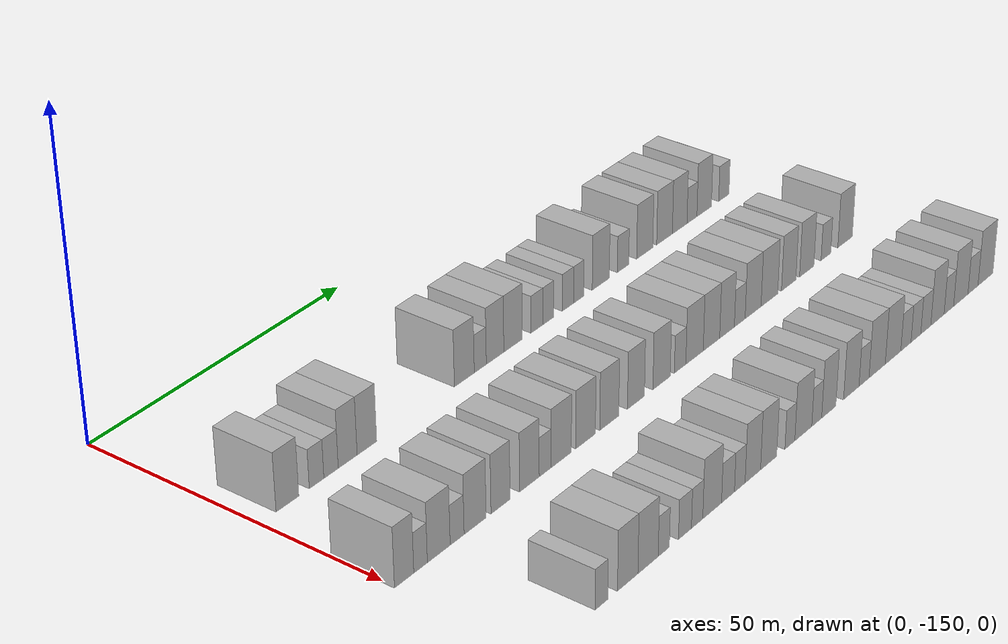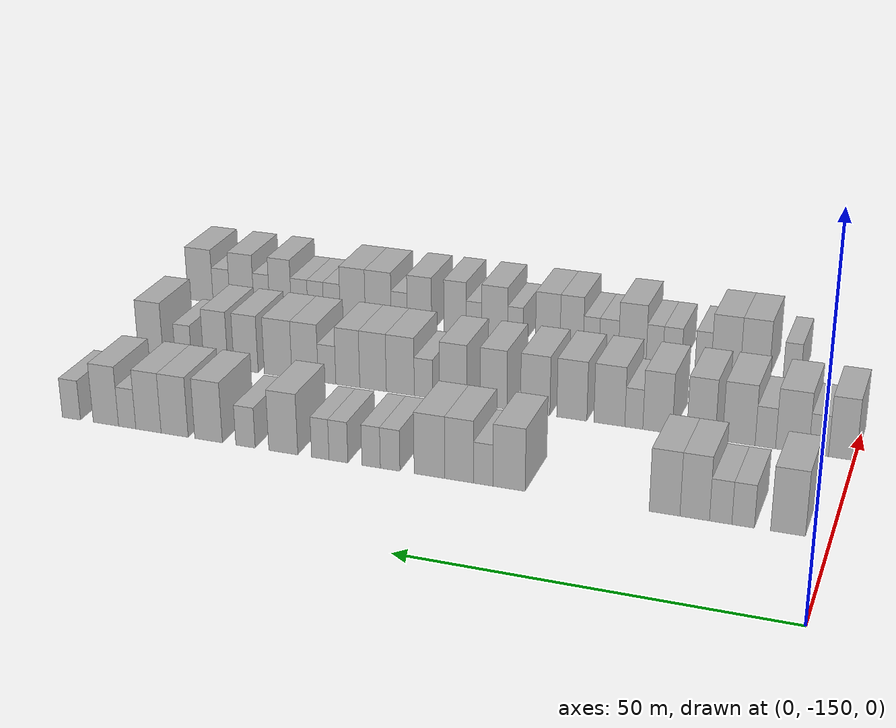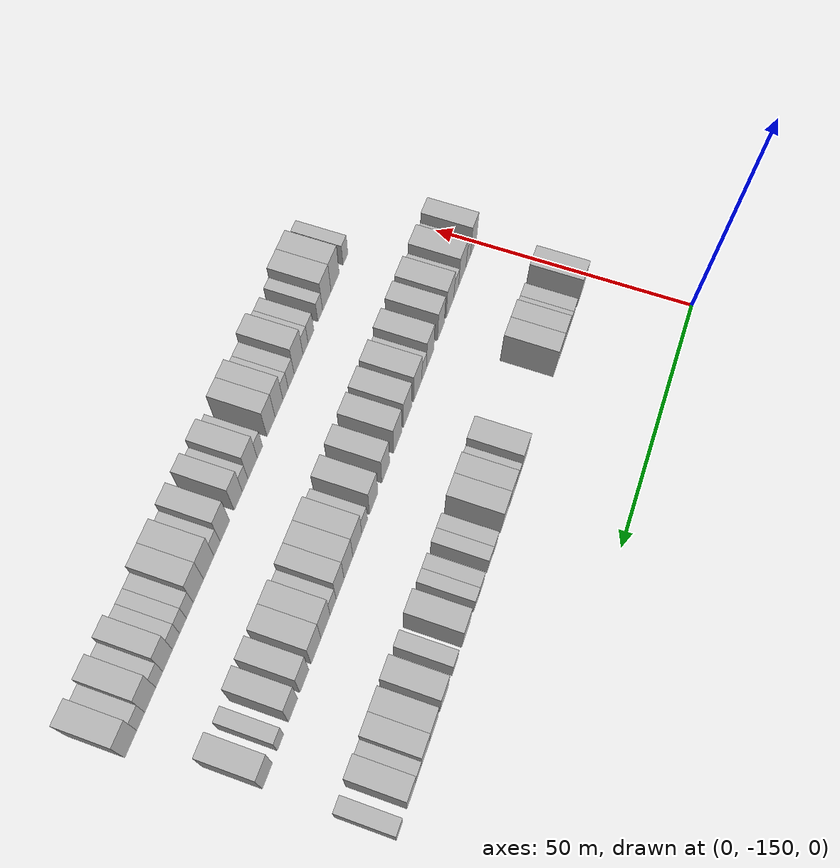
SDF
<sdf version="1.6">
 <world name="default">
  <model name="building_27">
   <static>1</static>
   <pose>25.0000 -144.7286 0 0.000000 0.000000 0.000000</pose>
   <link name="link">
    <pose>0 0 4.50 0 0 0</pose>
    <collision name="collision"><geometry><box><size>10.0000 4.3263 9.0000</size></box></geometry></collision>
    <visual name="visual">
     <cast_shadows>0</cast_shadows>
     <geometry><box><size>10.0000 4.3263 9.0000</size></box></geometry>
     <material>
      <script>
       <uri>model://HANNAS_wall/materials/scripts</uri>
       <uri>model://HANNAS_wall/materials/textures</uri>
       <name>vrc/HANNAS_wall</name>
      </script>
     </material>
    </visual>
   </link>
  </model>
  <model name="building_28">
   <static>1</static>
   <pose>25.0000 -139.1479 0 0.000000 0.000000 0.000000</pose>
   <link name="link">
    <pose>0 0 3.00 0 0 0</pose>
    <collision name="collision"><geometry><box><size>10.0000 2.8351 6.0000</size></box></geometry></collision>
    <visual name="visual">
     <cast_shadows>0</cast_shadows>
     <geometry><box><size>10.0000 2.8351 6.0000</size></box></geometry>
     <material>
      <script>
       <uri>model://HANNAS_wall/materials/scripts</uri>
       <uri>model://HANNAS_wall/materials/textures</uri>
       <name>vrc/HANNAS_wall</name>
      </script>
     </material>
    </visual>
   </link>
  </model>
  <model name="building_29">
   <static>1</static>
   <pose>25.0000 -136.3206 0 0.000000 0.000000 0.000000</pose>
   <link name="link">
    <pose>0 0 3.00 0 0 0</pose>
    <collision name="collision"><geometry><box><size>10.0000 2.8196 6.0000</size></box></geometry></collision>
    <visual name="visual">
     <cast_shadows>0</cast_shadows>
     <geometry><box><size>10.0000 2.8196 6.0000</size></box></geometry>
     <material>
      <script>
       <uri>model://HANNAS_wall/materials/scripts</uri>
       <uri>model://HANNAS_wall/materials/textures</uri>
       <name>vrc/HANNAS_wall</name>
      </script>
     </material>
    </visual>
   </link>
  </model>
  <model name="building_30">
   <static>1</static>
   <pose>25.0000 -133.0319 0 0.000000 0.000000 0.000000</pose>
   <link name="link">
    <pose>0 0 4.50 0 0 0</pose>
    <collision name="collision"><geometry><box><size>10.0000 3.7577 9.0000</size></box></geometry></collision>
    <visual name="visual">
     <cast_shadows>0</cast_shadows>
     <geometry><box><size>10.0000 3.7577 9.0000</size></box></geometry>
     <material>
      <script>
       <uri>model://HANNAS_wall/materials/scripts</uri>
       <uri>model://HANNAS_wall/materials/textures</uri>
       <name>vrc/HANNAS_wall</name>
      </script>
     </material>
    </visual>
   </link>
  </model>
  <model name="building_31">
   <static>1</static>
   <pose>25.0000 -129.1753 0 0.000000 0.000000 0.000000</pose>
   <link name="link">
    <pose>0 0 4.50 0 0 0</pose>
    <collision name="collision"><geometry><box><size>10.0000 3.9555 9.0000</size></box></geometry></collision>
    <visual name="visual">
     <cast_shadows>0</cast_shadows>
     <geometry><box><size>10.0000 3.9555 9.0000</size></box></geometry>
     <material>
      <script>
       <uri>model://HANNAS_wall/materials/scripts</uri>
       <uri>model://HANNAS_wall/materials/textures</uri>
       <name>vrc/HANNAS_wall</name>
      </script>
     </material>
    </visual>
   </link>
  </model>
  <model name="building_32">
   <static>1</static>
   <pose>25.0000 -108.6616 0 0.000000 0.000000 0.000000</pose>
   <link name="link">
    <pose>0 0 4.50 0 0 0</pose>
    <collision name="collision"><geometry><box><size>10.0000 4.3573 9.0000</size></box></geometry></collision>
    <visual name="visual">
     <cast_shadows>0</cast_shadows>
     <geometry><box><size>10.0000 4.3573 9.0000</size></box></geometry>
     <material>
      <script>
       <uri>model://HANNAS_wall/materials/scripts</uri>
       <uri>model://HANNAS_wall/materials/textures</uri>
       <name>vrc/HANNAS_wall</name>
      </script>
     </material>
    </visual>
   </link>
  </model>
  <model name="building_33">
   <static>1</static>
   <pose>25.0000 -105.1436 0 0.000000 0.000000 0.000000</pose>
   <link name="link">
    <pose>0 0 3.00 0 0 0</pose>
    <collision name="collision"><geometry><box><size>10.0000 2.6787 6.0000</size></box></geometry></collision>
    <visual name="visual">
     <cast_shadows>0</cast_shadows>
     <geometry><box><size>10.0000 2.6787 6.0000</size></box></geometry>
     <material>
      <script>
       <uri>model://HANNAS_wall/materials/scripts</uri>
       <uri>model://HANNAS_wall/materials/textures</uri>
       <name>vrc/HANNAS_wall</name>
      </script>
     </material>
    </visual>
   </link>
  </model>
  <model name="building_34">
   <static>1</static>
   <pose>25.0000 -101.8308 0 0.000000 0.000000 0.000000</pose>
   <link name="link">
    <pose>0 0 4.50 0 0 0</pose>
    <collision name="collision"><geometry><box><size>10.0000 3.9469 9.0000</size></box></geometry></collision>
    <visual name="visual">
     <cast_shadows>0</cast_shadows>
     <geometry><box><size>10.0000 3.9469 9.0000</size></box></geometry>
     <material>
      <script>
       <uri>model://HANNAS_wall/materials/scripts</uri>
       <uri>model://HANNAS_wall/materials/textures</uri>
       <name>vrc/HANNAS_wall</name>
      </script>
     </material>
    </visual>
   </link>
  </model>
  <model name="building_35">
   <static>1</static>
   <pose>25.0000 -97.7363 0 0.000000 0.000000 0.000000</pose>
   <link name="link">
    <pose>0 0 4.50 0 0 0</pose>
    <collision name="collision"><geometry><box><size>10.0000 4.2420 9.0000</size></box></geometry></collision>
    <visual name="visual">
     <cast_shadows>0</cast_shadows>
     <geometry><box><size>10.0000 4.2420 9.0000</size></box></geometry>
     <material>
      <script>
       <uri>model://HANNAS_wall/materials/scripts</uri>
       <uri>model://HANNAS_wall/materials/textures</uri>
       <name>vrc/HANNAS_wall</name>
      </script>
     </material>
    </visual>
   </link>
  </model>
  <model name="building_36">
   <static>1</static>
   <pose>25.0000 -92.2385 0 0.000000 0.000000 0.000000</pose>
   <link name="link">
    <pose>0 0 3.00 0 0 0</pose>
    <collision name="collision"><geometry><box><size>10.0000 2.7537 6.0000</size></box></geometry></collision>
    <visual name="visual">
     <cast_shadows>0</cast_shadows>
     <geometry><box><size>10.0000 2.7537 6.0000</size></box></geometry>
     <material>
      <script>
       <uri>model://HANNAS_wall/materials/scripts</uri>
       <uri>model://HANNAS_wall/materials/textures</uri>
       <name>vrc/HANNAS_wall</name>
      </script>
     </material>
    </visual>
   </link>
  </model>
  <model name="building_37">
   <static>1</static>
   <pose>25.0000 -89.5527 0 0.000000 0.000000 0.000000</pose>
   <link name="link">
    <pose>0 0 3.00 0 0 0</pose>
    <collision name="collision"><geometry><box><size>10.0000 2.6178 6.0000</size></box></geometry></collision>
    <visual name="visual">
     <cast_shadows>0</cast_shadows>
     <geometry><box><size>10.0000 2.6178 6.0000</size></box></geometry>
     <material>
      <script>
       <uri>model://HANNAS_wall/materials/scripts</uri>
       <uri>model://HANNAS_wall/materials/textures</uri>
       <name>vrc/HANNAS_wall</name>
      </script>
     </material>
    </visual>
   </link>
  </model>
  <model name="building_38">
   <static>1</static>
   <pose>25.0000 -84.8912 0 0.000000 0.000000 0.000000</pose>
   <link name="link">
    <pose>0 0 3.00 0 0 0</pose>
    <collision name="collision"><geometry><box><size>10.0000 2.7052 6.0000</size></box></geometry></collision>
    <visual name="visual">
     <cast_shadows>0</cast_shadows>
     <geometry><box><size>10.0000 2.7052 6.0000</size></box></geometry>
     <material>
      <script>
       <uri>model://HANNAS_wall/materials/scripts</uri>
       <uri>model://HANNAS_wall/materials/textures</uri>
       <name>vrc/HANNAS_wall</name>
      </script>
     </material>
    </visual>
   </link>
  </model>
  <model name="building_39">
   <static>1</static>
   <pose>25.0000 -82.2758 0 0.000000 0.000000 0.000000</pose>
   <link name="link">
    <pose>0 0 3.00 0 0 0</pose>
    <collision name="collision"><geometry><box><size>10.0000 2.5258 6.0000</size></box></geometry></collision>
    <visual name="visual">
     <cast_shadows>0</cast_shadows>
     <geometry><box><size>10.0000 2.5258 6.0000</size></box></geometry>
     <material>
      <script>
       <uri>model://HANNAS_wall/materials/scripts</uri>
       <uri>model://HANNAS_wall/materials/textures</uri>
       <name>vrc/HANNAS_wall</name>
      </script>
     </material>
    </visual>
   </link>
  </model>
  <model name="building_40">
   <static>1</static>
   <pose>25.0000 -76.8914 0 0.000000 0.000000 0.000000</pose>
   <link name="link">
    <pose>0 0 4.50 0 0 0</pose>
    <collision name="collision"><geometry><box><size>10.0000 4.2429 9.0000</size></box></geometry></collision>
    <visual name="visual">
     <cast_shadows>0</cast_shadows>
     <geometry><box><size>10.0000 4.2429 9.0000</size></box></geometry>
     <material>
      <script>
       <uri>model://HANNAS_wall/materials/scripts</uri>
       <uri>model://HANNAS_wall/materials/textures</uri>
       <name>vrc/HANNAS_wall</name>
      </script>
     </material>
    </visual>
   </link>
  </model>
  <model name="building_41">
   <static>1</static>
   <pose>25.0000 -71.3309 0 0.000000 0.000000 0.000000</pose>
   <link name="link">
    <pose>0 0 3.00 0 0 0</pose>
    <collision name="collision"><geometry><box><size>10.0000 2.8782 6.0000</size></box></geometry></collision>
    <visual name="visual">
     <cast_shadows>0</cast_shadows>
     <geometry><box><size>10.0000 2.8782 6.0000</size></box></geometry>
     <material>
      <script>
       <uri>model://HANNAS_wall/materials/scripts</uri>
       <uri>model://HANNAS_wall/materials/textures</uri>
       <name>vrc/HANNAS_wall</name>
      </script>
     </material>
    </visual>
   </link>
  </model>
  <model name="building_42">
   <static>1</static>
   <pose>25.0000 -65.8183 0 0.000000 0.000000 0.000000</pose>
   <link name="link">
    <pose>0 0 4.50 0 0 0</pose>
    <collision name="collision"><geometry><box><size>10.0000 4.1470 9.0000</size></box></geometry></collision>
    <visual name="visual">
     <cast_shadows>0</cast_shadows>
     <geometry><box><size>10.0000 4.1470 9.0000</size></box></geometry>
     <material>
      <script>
       <uri>model://HANNAS_wall/materials/scripts</uri>
       <uri>model://HANNAS_wall/materials/textures</uri>
       <name>vrc/HANNAS_wall</name>
      </script>
     </material>
    </visual>
   </link>
  </model>
  <model name="building_43">
   <static>1</static>
   <pose>25.0000 -60.6888 0 0.000000 0.000000 0.000000</pose>
   <link name="link">
    <pose>0 0 4.50 0 0 0</pose>
    <collision name="collision"><geometry><box><size>10.0000 4.1120 9.0000</size></box></geometry></collision>
    <visual name="visual">
     <cast_shadows>0</cast_shadows>
     <geometry><box><size>10.0000 4.1120 9.0000</size></box></geometry>
     <material>
      <script>
       <uri>model://HANNAS_wall/materials/scripts</uri>
       <uri>model://HANNAS_wall/materials/textures</uri>
       <name>vrc/HANNAS_wall</name>
      </script>
     </material>
    </visual>
   </link>
  </model>
  <model name="building_44">
   <static>1</static>
   <pose>25.0000 -56.6895 0 0.000000 0.000000 0.000000</pose>
   <link name="link">
    <pose>0 0 4.50 0 0 0</pose>
    <collision name="collision"><geometry><box><size>10.0000 3.8864 9.0000</size></box></geometry></collision>
    <visual name="visual">
     <cast_shadows>0</cast_shadows>
     <geometry><box><size>10.0000 3.8864 9.0000</size></box></geometry>
     <material>
      <script>
       <uri>model://HANNAS_wall/materials/scripts</uri>
       <uri>model://HANNAS_wall/materials/textures</uri>
       <name>vrc/HANNAS_wall</name>
      </script>
     </material>
    </visual>
   </link>
  </model>
  <model name="building_45">
   <static>1</static>
   <pose>25.0000 -53.4133 0 0.000000 0.000000 0.000000</pose>
   <link name="link">
    <pose>0 0 3.00 0 0 0</pose>
    <collision name="collision"><geometry><box><size>10.0000 2.6660 6.0000</size></box></geometry></collision>
    <visual name="visual">
     <cast_shadows>0</cast_shadows>
     <geometry><box><size>10.0000 2.6660 6.0000</size></box></geometry>
     <material>
      <script>
       <uri>model://HANNAS_wall/materials/scripts</uri>
       <uri>model://HANNAS_wall/materials/textures</uri>
       <name>vrc/HANNAS_wall</name>
      </script>
     </material>
    </visual>
   </link>
  </model>
  <model name="building_46">
   <static>1</static>
   <pose>25.0000 -50.1086 0 0.000000 0.000000 0.000000</pose>
   <link name="link">
    <pose>0 0 4.50 0 0 0</pose>
    <collision name="collision"><geometry><box><size>10.0000 3.9434 9.0000</size></box></geometry></collision>
    <visual name="visual">
     <cast_shadows>0</cast_shadows>
     <geometry><box><size>10.0000 3.9434 9.0000</size></box></geometry>
     <material>
      <script>
       <uri>model://HANNAS_wall/materials/scripts</uri>
       <uri>model://HANNAS_wall/materials/textures</uri>
       <name>vrc/HANNAS_wall</name>
      </script>
     </material>
    </visual>
   </link>
  </model>
  <model name="building_47">
   <static>1</static>
   <pose>25.0000 -44.7140 0 0.000000 0.000000 0.000000</pose>
   <link name="link">
    <pose>0 0 3.00 0 0 0</pose>
    <collision name="collision"><geometry><box><size>10.0000 2.8458 6.0000</size></box></geometry></collision>
    <visual name="visual">
     <cast_shadows>0</cast_shadows>
     <geometry><box><size>10.0000 2.8458 6.0000</size></box></geometry>
     <material>
      <script>
       <uri>model://HANNAS_wall/materials/scripts</uri>
       <uri>model://HANNAS_wall/materials/textures</uri>
       <name>vrc/HANNAS_wall</name>
      </script>
     </material>
    </visual>
   </link>
  </model>
  <model name="building_143">
   <static>1</static>
   <pose>47.0000 -148.4020 0 0.000000 0.000000 0.000000</pose>
   <link name="link">
    <pose>0 0 4.50 0 0 0</pose>
    <collision name="collision"><geometry><box><size>10.0000 3.6877 9.0000</size></box></geometry></collision>
    <visual name="visual">
     <cast_shadows>0</cast_shadows>
     <geometry><box><size>10.0000 3.6877 9.0000</size></box></geometry>
     <material>
      <script>
       <uri>model://HANNAS_wall/materials/scripts</uri>
       <uri>model://HANNAS_wall/materials/textures</uri>
       <name>vrc/HANNAS_wall</name>
      </script>
     </material>
    </visual>
   </link>
  </model>
  <model name="building_144">
   <static>1</static>
   <pose>47.0000 -145.2480 0 0.000000 0.000000 0.000000</pose>
   <link name="link">
    <pose>0 0 3.00 0 0 0</pose>
    <collision name="collision"><geometry><box><size>10.0000 2.6203 6.0000</size></box></geometry></collision>
    <visual name="visual">
     <cast_shadows>0</cast_shadows>
     <geometry><box><size>10.0000 2.6203 6.0000</size></box></geometry>
     <material>
      <script>
       <uri>model://HANNAS_wall/materials/scripts</uri>
       <uri>model://HANNAS_wall/materials/textures</uri>
       <name>vrc/HANNAS_wall</name>
      </script>
     </material>
    </visual>
   </link>
  </model>
  <model name="building_145">
   <static>1</static>
   <pose>47.0000 -141.7014 0 0.000000 0.000000 0.000000</pose>
   <link name="link">
    <pose>0 0 4.50 0 0 0</pose>
    <collision name="collision"><geometry><box><size>10.0000 4.4728 9.0000</size></box></geometry></collision>
    <visual name="visual">
     <cast_shadows>0</cast_shadows>
     <geometry><box><size>10.0000 4.4728 9.0000</size></box></geometry>
     <material>
      <script>
       <uri>model://HANNAS_wall/materials/scripts</uri>
       <uri>model://HANNAS_wall/materials/textures</uri>
       <name>vrc/HANNAS_wall</name>
      </script>
     </material>
    </visual>
   </link>
  </model>
  <model name="building_146">
   <static>1</static>
   <pose>47.0000 -138.0748 0 0.000000 0.000000 0.000000</pose>
   <link name="link">
    <pose>0 0 3.00 0 0 0</pose>
    <collision name="collision"><geometry><box><size>10.0000 2.7804 6.0000</size></box></geometry></collision>
    <visual name="visual">
     <cast_shadows>0</cast_shadows>
     <geometry><box><size>10.0000 2.7804 6.0000</size></box></geometry>
     <material>
      <script>
       <uri>model://HANNAS_wall/materials/scripts</uri>
       <uri>model://HANNAS_wall/materials/textures</uri>
       <name>vrc/HANNAS_wall</name>
      </script>
     </material>
    </visual>
   </link>
  </model>
  <model name="building_147">
   <static>1</static>
   <pose>47.0000 -134.4587 0 0.000000 0.000000 0.000000</pose>
   <link name="link">
    <pose>0 0 4.50 0 0 0</pose>
    <collision name="collision"><geometry><box><size>10.0000 4.4516 9.0000</size></box></geometry></collision>
    <visual name="visual">
     <cast_shadows>0</cast_shadows>
     <geometry><box><size>10.0000 4.4516 9.0000</size></box></geometry>
     <material>
      <script>
       <uri>model://HANNAS_wall/materials/scripts</uri>
       <uri>model://HANNAS_wall/materials/textures</uri>
       <name>vrc/HANNAS_wall</name>
      </script>
     </material>
    </visual>
   </link>
  </model>
  <model name="building_148">
   <static>1</static>
   <pose>47.0000 -129.2588 0 0.000000 0.000000 0.000000</pose>
   <link name="link">
    <pose>0 0 4.50 0 0 0</pose>
    <collision name="collision"><geometry><box><size>10.0000 3.9483 9.0000</size></box></geometry></collision>
    <visual name="visual">
     <cast_shadows>0</cast_shadows>
     <geometry><box><size>10.0000 3.9483 9.0000</size></box></geometry>
     <material>
      <script>
       <uri>model://HANNAS_wall/materials/scripts</uri>
       <uri>model://HANNAS_wall/materials/textures</uri>
       <name>vrc/HANNAS_wall</name>
      </script>
     </material>
    </visual>
   </link>
  </model>
  <model name="building_149">
   <static>1</static>
   <pose>47.0000 -123.2059 0 0.000000 0.000000 0.000000</pose>
   <link name="link">
    <pose>0 0 4.50 0 0 0</pose>
    <collision name="collision"><geometry><box><size>10.0000 4.1573 9.0000</size></box></geometry></collision>
    <visual name="visual">
     <cast_shadows>0</cast_shadows>
     <geometry><box><size>10.0000 4.1573 9.0000</size></box></geometry>
     <material>
      <script>
       <uri>model://HANNAS_wall/materials/scripts</uri>
       <uri>model://HANNAS_wall/materials/textures</uri>
       <name>vrc/HANNAS_wall</name>
      </script>
     </material>
    </visual>
   </link>
  </model>
  <model name="building_150">
   <static>1</static>
   <pose>47.0000 -119.8516 0 0.000000 0.000000 0.000000</pose>
   <link name="link">
    <pose>0 0 3.00 0 0 0</pose>
    <collision name="collision"><geometry><box><size>10.0000 2.5515 6.0000</size></box></geometry></collision>
    <visual name="visual">
     <cast_shadows>0</cast_shadows>
     <geometry><box><size>10.0000 2.5515 6.0000</size></box></geometry>
     <material>
      <script>
       <uri>model://HANNAS_wall/materials/scripts</uri>
       <uri>model://HANNAS_wall/materials/textures</uri>
       <name>vrc/HANNAS_wall</name>
      </script>
     </material>
    </visual>
   </link>
  </model>
  <model name="building_151">
   <static>1</static>
   <pose>47.0000 -116.3615 0 0.000000 0.000000 0.000000</pose>
   <link name="link">
    <pose>0 0 4.50 0 0 0</pose>
    <collision name="collision"><geometry><box><size>10.0000 4.4286 9.0000</size></box></geometry></collision>
    <visual name="visual">
     <cast_shadows>0</cast_shadows>
     <geometry><box><size>10.0000 4.4286 9.0000</size></box></geometry>
     <material>
      <script>
       <uri>model://HANNAS_wall/materials/scripts</uri>
       <uri>model://HANNAS_wall/materials/textures</uri>
       <name>vrc/HANNAS_wall</name>
      </script>
     </material>
    </visual>
   </link>
  </model>
  <model name="building_152">
   <static>1</static>
   <pose>47.0000 -110.9708 0 0.000000 0.000000 0.000000</pose>
   <link name="link">
    <pose>0 0 4.50 0 0 0</pose>
    <collision name="collision"><geometry><box><size>10.0000 4.3528 9.0000</size></box></geometry></collision>
    <visual name="visual">
     <cast_shadows>0</cast_shadows>
     <geometry><box><size>10.0000 4.3528 9.0000</size></box></geometry>
     <material>
      <script>
       <uri>model://HANNAS_wall/materials/scripts</uri>
       <uri>model://HANNAS_wall/materials/textures</uri>
       <name>vrc/HANNAS_wall</name>
      </script>
     </material>
    </visual>
   </link>
  </model>
  <model name="building_153">
   <static>1</static>
   <pose>47.0000 -105.6445 0 0.000000 0.000000 0.000000</pose>
   <link name="link">
    <pose>0 0 4.50 0 0 0</pose>
    <collision name="collision"><geometry><box><size>10.0000 4.2999 9.0000</size></box></geometry></collision>
    <visual name="visual">
     <cast_shadows>0</cast_shadows>
     <geometry><box><size>10.0000 4.2999 9.0000</size></box></geometry>
     <material>
      <script>
       <uri>model://HANNAS_wall/materials/scripts</uri>
       <uri>model://HANNAS_wall/materials/textures</uri>
       <name>vrc/HANNAS_wall</name>
      </script>
     </material>
    </visual>
   </link>
  </model>
  <model name="building_154">
   <static>1</static>
   <pose>47.0000 -99.5149 0 0.000000 0.000000 0.000000</pose>
   <link name="link">
    <pose>0 0 4.50 0 0 0</pose>
    <collision name="collision"><geometry><box><size>10.0000 3.9592 9.0000</size></box></geometry></collision>
    <visual name="visual">
     <cast_shadows>0</cast_shadows>
     <geometry><box><size>10.0000 3.9592 9.0000</size></box></geometry>
     <material>
      <script>
       <uri>model://HANNAS_wall/materials/scripts</uri>
       <uri>model://HANNAS_wall/materials/textures</uri>
       <name>vrc/HANNAS_wall</name>
      </script>
     </material>
    </visual>
   </link>
  </model>
  <model name="building_155">
   <static>1</static>
   <pose>47.0000 -93.4706 0 0.000000 0.000000 0.000000</pose>
   <link name="link">
    <pose>0 0 4.50 0 0 0</pose>
    <collision name="collision"><geometry><box><size>10.0000 4.1294 9.0000</size></box></geometry></collision>
    <visual name="visual">
     <cast_shadows>0</cast_shadows>
     <geometry><box><size>10.0000 4.1294 9.0000</size></box></geometry>
     <material>
      <script>
       <uri>model://HANNAS_wall/materials/scripts</uri>
       <uri>model://HANNAS_wall/materials/textures</uri>
       <name>vrc/HANNAS_wall</name>
      </script>
     </material>
    </visual>
   </link>
  </model>
  <model name="building_156">
   <static>1</static>
   <pose>47.0000 -89.0085 0 0.000000 0.000000 0.000000</pose>
   <link name="link">
    <pose>0 0 3.00 0 0 0</pose>
    <collision name="collision"><geometry><box><size>10.0000 2.7948 6.0000</size></box></geometry></collision>
    <visual name="visual">
     <cast_shadows>0</cast_shadows>
     <geometry><box><size>10.0000 2.7948 6.0000</size></box></geometry>
     <material>
      <script>
       <uri>model://HANNAS_wall/materials/scripts</uri>
       <uri>model://HANNAS_wall/materials/textures</uri>
       <name>vrc/HANNAS_wall</name>
      </script>
     </material>
    </visual>
   </link>
  </model>
  <model name="building_157">
   <static>1</static>
   <pose>47.0000 -85.4688 0 0.000000 0.000000 0.000000</pose>
   <link name="link">
    <pose>0 0 4.50 0 0 0</pose>
    <collision name="collision"><geometry><box><size>10.0000 4.2846 9.0000</size></box></geometry></collision>
    <visual name="visual">
     <cast_shadows>0</cast_shadows>
     <geometry><box><size>10.0000 4.2846 9.0000</size></box></geometry>
     <material>
      <script>
       <uri>model://HANNAS_wall/materials/scripts</uri>
       <uri>model://HANNAS_wall/materials/textures</uri>
       <name>vrc/HANNAS_wall</name>
      </script>
     </material>
    </visual>
   </link>
  </model>
  <model name="building_158">
   <static>1</static>
   <pose>47.0000 -81.2710 0 0.000000 0.000000 0.000000</pose>
   <link name="link">
    <pose>0 0 4.50 0 0 0</pose>
    <collision name="collision"><geometry><box><size>10.0000 4.1111 9.0000</size></box></geometry></collision>
    <visual name="visual">
     <cast_shadows>0</cast_shadows>
     <geometry><box><size>10.0000 4.1111 9.0000</size></box></geometry>
     <material>
      <script>
       <uri>model://HANNAS_wall/materials/scripts</uri>
       <uri>model://HANNAS_wall/materials/textures</uri>
       <name>vrc/HANNAS_wall</name>
      </script>
     </material>
    </visual>
   </link>
  </model>
  <model name="building_159">
   <static>1</static>
   <pose>47.0000 -77.3482 0 0.000000 0.000000 0.000000</pose>
   <link name="link">
    <pose>0 0 4.50 0 0 0</pose>
    <collision name="collision"><geometry><box><size>10.0000 3.7344 9.0000</size></box></geometry></collision>
    <visual name="visual">
     <cast_shadows>0</cast_shadows>
     <geometry><box><size>10.0000 3.7344 9.0000</size></box></geometry>
     <material>
      <script>
       <uri>model://HANNAS_wall/materials/scripts</uri>
       <uri>model://HANNAS_wall/materials/textures</uri>
       <name>vrc/HANNAS_wall</name>
      </script>
     </material>
    </visual>
   </link>
  </model>
  <model name="building_160">
   <static>1</static>
   <pose>47.0000 -74.0999 0 0.000000 0.000000 0.000000</pose>
   <link name="link">
    <pose>0 0 3.00 0 0 0</pose>
    <collision name="collision"><geometry><box><size>10.0000 2.7622 6.0000</size></box></geometry></collision>
    <visual name="visual">
     <cast_shadows>0</cast_shadows>
     <geometry><box><size>10.0000 2.7622 6.0000</size></box></geometry>
     <material>
      <script>
       <uri>model://HANNAS_wall/materials/scripts</uri>
       <uri>model://HANNAS_wall/materials/textures</uri>
       <name>vrc/HANNAS_wall</name>
      </script>
     </material>
    </visual>
   </link>
  </model>
  <model name="building_161">
   <static>1</static>
   <pose>47.0000 -70.6413 0 0.000000 0.000000 0.000000</pose>
   <link name="link">
    <pose>0 0 4.50 0 0 0</pose>
    <collision name="collision"><geometry><box><size>10.0000 4.1549 9.0000</size></box></geometry></collision>
    <visual name="visual">
     <cast_shadows>0</cast_shadows>
     <geometry><box><size>10.0000 4.1549 9.0000</size></box></geometry>
     <material>
      <script>
       <uri>model://HANNAS_wall/materials/scripts</uri>
       <uri>model://HANNAS_wall/materials/textures</uri>
       <name>vrc/HANNAS_wall</name>
      </script>
     </material>
    </visual>
   </link>
  </model>
  <model name="building_162">
   <static>1</static>
   <pose>47.0000 -66.3569 0 0.000000 0.000000 0.000000</pose>
   <link name="link">
    <pose>0 0 4.50 0 0 0</pose>
    <collision name="collision"><geometry><box><size>10.0000 4.4139 9.0000</size></box></geometry></collision>
    <visual name="visual">
     <cast_shadows>0</cast_shadows>
     <geometry><box><size>10.0000 4.4139 9.0000</size></box></geometry>
     <material>
      <script>
       <uri>model://HANNAS_wall/materials/scripts</uri>
       <uri>model://HANNAS_wall/materials/textures</uri>
       <name>vrc/HANNAS_wall</name>
      </script>
     </material>
    </visual>
   </link>
  </model>
  <model name="building_163">
   <static>1</static>
   <pose>47.0000 -61.2045 0 0.000000 0.000000 0.000000</pose>
   <link name="link">
    <pose>0 0 4.50 0 0 0</pose>
    <collision name="collision"><geometry><box><size>10.0000 3.8911 9.0000</size></box></geometry></collision>
    <visual name="visual">
     <cast_shadows>0</cast_shadows>
     <geometry><box><size>10.0000 3.8911 9.0000</size></box></geometry>
     <material>
      <script>
       <uri>model://HANNAS_wall/materials/scripts</uri>
       <uri>model://HANNAS_wall/materials/textures</uri>
       <name>vrc/HANNAS_wall</name>
      </script>
     </material>
    </visual>
   </link>
  </model>
  <model name="building_164">
   <static>1</static>
   <pose>47.0000 -56.2914 0 0.000000 0.000000 0.000000</pose>
   <link name="link">
    <pose>0 0 4.50 0 0 0</pose>
    <collision name="collision"><geometry><box><size>10.0000 3.9350 9.0000</size></box></geometry></collision>
    <visual name="visual">
     <cast_shadows>0</cast_shadows>
     <geometry><box><size>10.0000 3.9350 9.0000</size></box></geometry>
     <material>
      <script>
       <uri>model://HANNAS_wall/materials/scripts</uri>
       <uri>model://HANNAS_wall/materials/textures</uri>
       <name>vrc/HANNAS_wall</name>
      </script>
     </material>
    </visual>
   </link>
  </model>
  <model name="building_165">
   <static>1</static>
   <pose>47.0000 -50.9749 0 0.000000 0.000000 0.000000</pose>
   <link name="link">
    <pose>0 0 3.00 0 0 0</pose>
    <collision name="collision"><geometry><box><size>10.0000 2.6981 6.0000</size></box></geometry></collision>
    <visual name="visual">
     <cast_shadows>0</cast_shadows>
     <geometry><box><size>10.0000 2.6981 6.0000</size></box></geometry>
     <material>
      <script>
       <uri>model://HANNAS_wall/materials/scripts</uri>
       <uri>model://HANNAS_wall/materials/textures</uri>
       <name>vrc/HANNAS_wall</name>
      </script>
     </material>
    </visual>
   </link>
  </model>
  <model name="building_166">
   <static>1</static>
   <pose>47.0000 -45.5575 0 0.000000 0.000000 0.000000</pose>
   <link name="link">
    <pose>0 0 4.50 0 0 0</pose>
    <collision name="collision"><geometry><box><size>10.0000 4.1367 9.0000</size></box></geometry></collision>
    <visual name="visual">
     <cast_shadows>0</cast_shadows>
     <geometry><box><size>10.0000 4.1367 9.0000</size></box></geometry>
     <material>
      <script>
       <uri>model://HANNAS_wall/materials/scripts</uri>
       <uri>model://HANNAS_wall/materials/textures</uri>
       <name>vrc/HANNAS_wall</name>
      </script>
     </material>
    </visual>
   </link>
  </model>
  <model name="building_262">
   <static>1</static>
   <pose>69.0000 -138.1183 0 0.000000 0.000000 0.000000</pose>
   <link name="link">
    <pose>0 0 3.00 0 0 0</pose>
    <collision name="collision"><geometry><box><size>10.0000 2.5719 6.0000</size></box></geometry></collision>
    <visual name="visual">
     <cast_shadows>0</cast_shadows>
     <geometry><box><size>10.0000 2.5719 6.0000</size></box></geometry>
     <material>
      <script>
       <uri>model://HANNAS_wall/materials/scripts</uri>
       <uri>model://HANNAS_wall/materials/textures</uri>
       <name>vrc/HANNAS_wall</name>
      </script>
     </material>
    </visual>
   </link>
  </model>
  <model name="building_263">
   <static>1</static>
   <pose>69.0000 -132.6906 0 0.000000 0.000000 0.000000</pose>
   <link name="link">
    <pose>0 0 4.50 0 0 0</pose>
    <collision name="collision"><geometry><box><size>10.0000 4.2836 9.0000</size></box></geometry></collision>
    <visual name="visual">
     <cast_shadows>0</cast_shadows>
     <geometry><box><size>10.0000 4.2836 9.0000</size></box></geometry>
     <material>
      <script>
       <uri>model://HANNAS_wall/materials/scripts</uri>
       <uri>model://HANNAS_wall/materials/textures</uri>
       <name>vrc/HANNAS_wall</name>
      </script>
     </material>
    </visual>
   </link>
  </model>
  <model name="building_264">
   <static>1</static>
   <pose>69.0000 -128.3835 0 0.000000 0.000000 0.000000</pose>
   <link name="link">
    <pose>0 0 4.50 0 0 0</pose>
    <collision name="collision"><geometry><box><size>10.0000 4.3304 9.0000</size></box></geometry></collision>
    <visual name="visual">
     <cast_shadows>0</cast_shadows>
     <geometry><box><size>10.0000 4.3304 9.0000</size></box></geometry>
     <material>
      <script>
       <uri>model://HANNAS_wall/materials/scripts</uri>
       <uri>model://HANNAS_wall/materials/textures</uri>
       <name>vrc/HANNAS_wall</name>
      </script>
     </material>
    </visual>
   </link>
  </model>
  <model name="building_265">
   <static>1</static>
   <pose>69.0000 -125.0074 0 0.000000 0.000000 0.000000</pose>
   <link name="link">
    <pose>0 0 3.00 0 0 0</pose>
    <collision name="collision"><geometry><box><size>10.0000 2.4220 6.0000</size></box></geometry></collision>
    <visual name="visual">
     <cast_shadows>0</cast_shadows>
     <geometry><box><size>10.0000 2.4220 6.0000</size></box></geometry>
     <material>
      <script>
       <uri>model://HANNAS_wall/materials/scripts</uri>
       <uri>model://HANNAS_wall/materials/textures</uri>
       <name>vrc/HANNAS_wall</name>
      </script>
     </material>
    </visual>
   </link>
  </model>
  <model name="building_266">
   <static>1</static>
   <pose>69.0000 -120.3635 0 0.000000 0.000000 0.000000</pose>
   <link name="link">
    <pose>0 0 3.00 0 0 0</pose>
    <collision name="collision"><geometry><box><size>10.0000 2.8657 6.0000</size></box></geometry></collision>
    <visual name="visual">
     <cast_shadows>0</cast_shadows>
     <geometry><box><size>10.0000 2.8657 6.0000</size></box></geometry>
     <material>
      <script>
       <uri>model://HANNAS_wall/materials/scripts</uri>
       <uri>model://HANNAS_wall/materials/textures</uri>
       <name>vrc/HANNAS_wall</name>
      </script>
     </material>
    </visual>
   </link>
  </model>
  <model name="building_267">
   <static>1</static>
   <pose>69.0000 -117.6602 0 0.000000 0.000000 0.000000</pose>
   <link name="link">
    <pose>0 0 3.00 0 0 0</pose>
    <collision name="collision"><geometry><box><size>10.0000 2.5409 6.0000</size></box></geometry></collision>
    <visual name="visual">
     <cast_shadows>0</cast_shadows>
     <geometry><box><size>10.0000 2.5409 6.0000</size></box></geometry>
     <material>
      <script>
       <uri>model://HANNAS_wall/materials/scripts</uri>
       <uri>model://HANNAS_wall/materials/textures</uri>
       <name>vrc/HANNAS_wall</name>
      </script>
     </material>
    </visual>
   </link>
  </model>
  <model name="building_268">
   <static>1</static>
   <pose>69.0000 -114.2604 0 0.000000 0.000000 0.000000</pose>
   <link name="link">
    <pose>0 0 4.50 0 0 0</pose>
    <collision name="collision"><geometry><box><size>10.0000 4.2589 9.0000</size></box></geometry></collision>
    <visual name="visual">
     <cast_shadows>0</cast_shadows>
     <geometry><box><size>10.0000 4.2589 9.0000</size></box></geometry>
     <material>
      <script>
       <uri>model://HANNAS_wall/materials/scripts</uri>
       <uri>model://HANNAS_wall/materials/textures</uri>
       <name>vrc/HANNAS_wall</name>
      </script>
     </material>
    </visual>
   </link>
  </model>
  <model name="building_269">
   <static>1</static>
   <pose>69.0000 -110.6438 0 0.000000 0.000000 0.000000</pose>
   <link name="link">
    <pose>0 0 3.00 0 0 0</pose>
    <collision name="collision"><geometry><box><size>10.0000 2.9743 6.0000</size></box></geometry></collision>
    <visual name="visual">
     <cast_shadows>0</cast_shadows>
     <geometry><box><size>10.0000 2.9743 6.0000</size></box></geometry>
     <material>
      <script>
       <uri>model://HANNAS_wall/materials/scripts</uri>
       <uri>model://HANNAS_wall/materials/textures</uri>
       <name>vrc/HANNAS_wall</name>
      </script>
     </material>
    </visual>
   </link>
  </model>
  <model name="building_270">
   <static>1</static>
   <pose>69.0000 -107.9150 0 0.000000 0.000000 0.000000</pose>
   <link name="link">
    <pose>0 0 3.00 0 0 0</pose>
    <collision name="collision"><geometry><box><size>10.0000 2.4832 6.0000</size></box></geometry></collision>
    <visual name="visual">
     <cast_shadows>0</cast_shadows>
     <geometry><box><size>10.0000 2.4832 6.0000</size></box></geometry>
     <material>
      <script>
       <uri>model://HANNAS_wall/materials/scripts</uri>
       <uri>model://HANNAS_wall/materials/textures</uri>
       <name>vrc/HANNAS_wall</name>
      </script>
     </material>
    </visual>
   </link>
  </model>
  <model name="building_271">
   <static>1</static>
   <pose>69.0000 -104.8496 0 0.000000 0.000000 0.000000</pose>
   <link name="link">
    <pose>0 0 4.50 0 0 0</pose>
    <collision name="collision"><geometry><box><size>10.0000 3.6477 9.0000</size></box></geometry></collision>
    <visual name="visual">
     <cast_shadows>0</cast_shadows>
     <geometry><box><size>10.0000 3.6477 9.0000</size></box></geometry>
     <material>
      <script>
       <uri>model://HANNAS_wall/materials/scripts</uri>
       <uri>model://HANNAS_wall/materials/textures</uri>
       <name>vrc/HANNAS_wall</name>
      </script>
     </material>
    </visual>
   </link>
  </model>
  <model name="building_272">
   <static>1</static>
   <pose>69.0000 -101.0915 0 0.000000 0.000000 0.000000</pose>
   <link name="link">
    <pose>0 0 4.50 0 0 0</pose>
    <collision name="collision"><geometry><box><size>10.0000 3.8683 9.0000</size></box></geometry></collision>
    <visual name="visual">
     <cast_shadows>0</cast_shadows>
     <geometry><box><size>10.0000 3.8683 9.0000</size></box></geometry>
     <material>
      <script>
       <uri>model://HANNAS_wall/materials/scripts</uri>
       <uri>model://HANNAS_wall/materials/textures</uri>
       <name>vrc/HANNAS_wall</name>
      </script>
     </material>
    </visual>
   </link>
  </model>
  <model name="building_273">
   <static>1</static>
   <pose>69.0000 -95.9452 0 0.000000 0.000000 0.000000</pose>
   <link name="link">
    <pose>0 0 3.00 0 0 0</pose>
    <collision name="collision"><geometry><box><size>10.0000 2.4244 6.0000</size></box></geometry></collision>
    <visual name="visual">
     <cast_shadows>0</cast_shadows>
     <geometry><box><size>10.0000 2.4244 6.0000</size></box></geometry>
     <material>
      <script>
       <uri>model://HANNAS_wall/materials/scripts</uri>
       <uri>model://HANNAS_wall/materials/textures</uri>
       <name>vrc/HANNAS_wall</name>
      </script>
     </material>
    </visual>
   </link>
  </model>
  <model name="building_274">
   <static>1</static>
   <pose>69.0000 -92.6307 0 0.000000 0.000000 0.000000</pose>
   <link name="link">
    <pose>0 0 4.50 0 0 0</pose>
    <collision name="collision"><geometry><box><size>10.0000 4.2046 9.0000</size></box></geometry></collision>
    <visual name="visual">
     <cast_shadows>0</cast_shadows>
     <geometry><box><size>10.0000 4.2046 9.0000</size></box></geometry>
     <material>
      <script>
       <uri>model://HANNAS_wall/materials/scripts</uri>
       <uri>model://HANNAS_wall/materials/textures</uri>
       <name>vrc/HANNAS_wall</name>
      </script>
     </material>
    </visual>
   </link>
  </model>
  <model name="building_275">
   <static>1</static>
   <pose>69.0000 -89.2849 0 0.000000 0.000000 0.000000</pose>
   <link name="link">
    <pose>0 0 3.00 0 0 0</pose>
    <collision name="collision"><geometry><box><size>10.0000 2.4870 6.0000</size></box></geometry></collision>
    <visual name="visual">
     <cast_shadows>0</cast_shadows>
     <geometry><box><size>10.0000 2.4870 6.0000</size></box></geometry>
     <material>
      <script>
       <uri>model://HANNAS_wall/materials/scripts</uri>
       <uri>model://HANNAS_wall/materials/textures</uri>
       <name>vrc/HANNAS_wall</name>
      </script>
     </material>
    </visual>
   </link>
  </model>
  <model name="building_276">
   <static>1</static>
   <pose>69.0000 -86.2406 0 0.000000 0.000000 0.000000</pose>
   <link name="link">
    <pose>0 0 4.50 0 0 0</pose>
    <collision name="collision"><geometry><box><size>10.0000 3.6017 9.0000</size></box></geometry></collision>
    <visual name="visual">
     <cast_shadows>0</cast_shadows>
     <geometry><box><size>10.0000 3.6017 9.0000</size></box></geometry>
     <material>
      <script>
       <uri>model://HANNAS_wall/materials/scripts</uri>
       <uri>model://HANNAS_wall/materials/textures</uri>
       <name>vrc/HANNAS_wall</name>
      </script>
     </material>
    </visual>
   </link>
  </model>
  <model name="building_277">
   <static>1</static>
   <pose>69.0000 -80.4331 0 0.000000 0.000000 0.000000</pose>
   <link name="link">
    <pose>0 0 4.50 0 0 0</pose>
    <collision name="collision"><geometry><box><size>10.0000 4.0133 9.0000</size></box></geometry></collision>
    <visual name="visual">
     <cast_shadows>0</cast_shadows>
     <geometry><box><size>10.0000 4.0133 9.0000</size></box></geometry>
     <material>
      <script>
       <uri>model://HANNAS_wall/materials/scripts</uri>
       <uri>model://HANNAS_wall/materials/textures</uri>
       <name>vrc/HANNAS_wall</name>
      </script>
     </material>
    </visual>
   </link>
  </model>
  <model name="building_278">
   <static>1</static>
   <pose>69.0000 -77.1036 0 0.000000 0.000000 0.000000</pose>
   <link name="link">
    <pose>0 0 3.00 0 0 0</pose>
    <collision name="collision"><geometry><box><size>10.0000 2.6456 6.0000</size></box></geometry></collision>
    <visual name="visual">
     <cast_shadows>0</cast_shadows>
     <geometry><box><size>10.0000 2.6456 6.0000</size></box></geometry>
     <material>
      <script>
       <uri>model://HANNAS_wall/materials/scripts</uri>
       <uri>model://HANNAS_wall/materials/textures</uri>
       <name>vrc/HANNAS_wall</name>
      </script>
     </material>
    </visual>
   </link>
  </model>
  <model name="building_279">
   <static>1</static>
   <pose>69.0000 -73.6116 0 0.000000 0.000000 0.000000</pose>
   <link name="link">
    <pose>0 0 4.50 0 0 0</pose>
    <collision name="collision"><geometry><box><size>10.0000 4.3384 9.0000</size></box></geometry></collision>
    <visual name="visual">
     <cast_shadows>0</cast_shadows>
     <geometry><box><size>10.0000 4.3384 9.0000</size></box></geometry>
     <material>
      <script>
       <uri>model://HANNAS_wall/materials/scripts</uri>
       <uri>model://HANNAS_wall/materials/textures</uri>
       <name>vrc/HANNAS_wall</name>
      </script>
     </material>
    </visual>
   </link>
  </model>
  <model name="building_280">
   <static>1</static>
   <pose>69.0000 -69.3207 0 0.000000 0.000000 0.000000</pose>
   <link name="link">
    <pose>0 0 4.50 0 0 0</pose>
    <collision name="collision"><geometry><box><size>10.0000 4.2433 9.0000</size></box></geometry></collision>
    <visual name="visual">
     <cast_shadows>0</cast_shadows>
     <geometry><box><size>10.0000 4.2433 9.0000</size></box></geometry>
     <material>
      <script>
       <uri>model://HANNAS_wall/materials/scripts</uri>
       <uri>model://HANNAS_wall/materials/textures</uri>
       <name>vrc/HANNAS_wall</name>
      </script>
     </material>
    </visual>
   </link>
  </model>
  <model name="building_281">
   <static>1</static>
   <pose>69.0000 -65.7976 0 0.000000 0.000000 0.000000</pose>
   <link name="link">
    <pose>0 0 3.00 0 0 0</pose>
    <collision name="collision"><geometry><box><size>10.0000 2.8029 6.0000</size></box></geometry></collision>
    <visual name="visual">
     <cast_shadows>0</cast_shadows>
     <geometry><box><size>10.0000 2.8029 6.0000</size></box></geometry>
     <material>
      <script>
       <uri>model://HANNAS_wall/materials/scripts</uri>
       <uri>model://HANNAS_wall/materials/textures</uri>
       <name>vrc/HANNAS_wall</name>
      </script>
     </material>
    </visual>
   </link>
  </model>
  <model name="building_282">
   <static>1</static>
   <pose>69.0000 -63.0381 0 0.000000 0.000000 0.000000</pose>
   <link name="link">
    <pose>0 0 3.00 0 0 0</pose>
    <collision name="collision"><geometry><box><size>10.0000 2.7161 6.0000</size></box></geometry></collision>
    <visual name="visual">
     <cast_shadows>0</cast_shadows>
     <geometry><box><size>10.0000 2.7161 6.0000</size></box></geometry>
     <material>
      <script>
       <uri>model://HANNAS_wall/materials/scripts</uri>
       <uri>model://HANNAS_wall/materials/textures</uri>
       <name>vrc/HANNAS_wall</name>
      </script>
     </material>
    </visual>
   </link>
  </model>
  <model name="building_283">
   <static>1</static>
   <pose>69.0000 -60.2705 0 0.000000 0.000000 0.000000</pose>
   <link name="link">
    <pose>0 0 3.00 0 0 0</pose>
    <collision name="collision"><geometry><box><size>10.0000 2.8190 6.0000</size></box></geometry></collision>
    <visual name="visual">
     <cast_shadows>0</cast_shadows>
     <geometry><box><size>10.0000 2.8190 6.0000</size></box></geometry>
     <material>
      <script>
       <uri>model://HANNAS_wall/materials/scripts</uri>
       <uri>model://HANNAS_wall/materials/textures</uri>
       <name>vrc/HANNAS_wall</name>
      </script>
     </material>
    </visual>
   </link>
  </model>
  <model name="building_284">
   <static>1</static>
   <pose>69.0000 -56.9726 0 0.000000 0.000000 0.000000</pose>
   <link name="link">
    <pose>0 0 4.50 0 0 0</pose>
    <collision name="collision"><geometry><box><size>10.0000 3.7770 9.0000</size></box></geometry></collision>
    <visual name="visual">
     <cast_shadows>0</cast_shadows>
     <geometry><box><size>10.0000 3.7770 9.0000</size></box></geometry>
     <material>
      <script>
       <uri>model://HANNAS_wall/materials/scripts</uri>
       <uri>model://HANNAS_wall/materials/textures</uri>
       <name>vrc/HANNAS_wall</name>
      </script>
     </material>
    </visual>
   </link>
  </model>
  <model name="building_285">
   <static>1</static>
   <pose>69.0000 -53.7158 0 0.000000 0.000000 0.000000</pose>
   <link name="link">
    <pose>0 0 3.00 0 0 0</pose>
    <collision name="collision"><geometry><box><size>10.0000 2.7365 6.0000</size></box></geometry></collision>
    <visual name="visual">
     <cast_shadows>0</cast_shadows>
     <geometry><box><size>10.0000 2.7365 6.0000</size></box></geometry>
     <material>
      <script>
       <uri>model://HANNAS_wall/materials/scripts</uri>
       <uri>model://HANNAS_wall/materials/textures</uri>
       <name>vrc/HANNAS_wall</name>
      </script>
     </material>
    </visual>
   </link>
  </model>
  <model name="building_286">
   <static>1</static>
   <pose>69.0000 -50.2548 0 0.000000 0.000000 0.000000</pose>
   <link name="link">
    <pose>0 0 4.50 0 0 0</pose>
    <collision name="collision"><geometry><box><size>10.0000 4.1856 9.0000</size></box></geometry></collision>
    <visual name="visual">
     <cast_shadows>0</cast_shadows>
     <geometry><box><size>10.0000 4.1856 9.0000</size></box></geometry>
     <material>
      <script>
       <uri>model://HANNAS_wall/materials/scripts</uri>
       <uri>model://HANNAS_wall/materials/textures</uri>
       <name>vrc/HANNAS_wall</name>
      </script>
     </material>
    </visual>
   </link>
  </model>
  <model name="building_287">
   <static>1</static>
   <pose>69.0000 -46.6688 0 0.000000 0.000000 0.000000</pose>
   <link name="link">
    <pose>0 0 3.00 0 0 0</pose>
    <collision name="collision"><geometry><box><size>10.0000 2.9864 6.0000</size></box></geometry></collision>
    <visual name="visual">
     <cast_shadows>0</cast_shadows>
     <geometry><box><size>10.0000 2.9864 6.0000</size></box></geometry>
     <material>
      <script>
       <uri>model://HANNAS_wall/materials/scripts</uri>
       <uri>model://HANNAS_wall/materials/textures</uri>
       <name>vrc/HANNAS_wall</name>
      </script>
     </material>
    </visual>
   </link>
  </model>
  <model name="building_288">
   <static>1</static>
   <pose>69.0000 -42.9496 0 0.000000 0.000000 0.000000</pose>
   <link name="link">
    <pose>0 0 4.50 0 0 0</pose>
    <collision name="collision"><geometry><box><size>10.0000 4.4519 9.0000</size></box></geometry></collision>
    <visual name="visual">
     <cast_shadows>0</cast_shadows>
     <geometry><box><size>10.0000 4.4519 9.0000</size></box></geometry>
     <material>
      <script>
       <uri>model://HANNAS_wall/materials/scripts</uri>
       <uri>model://HANNAS_wall/materials/textures</uri>
       <name>vrc/HANNAS_wall</name>
      </script>
     </material>
    </visual>
   </link>
  </model>
 </world>
</sdf>
